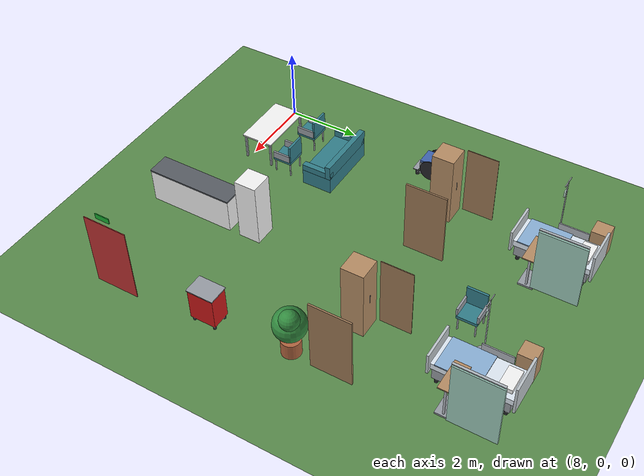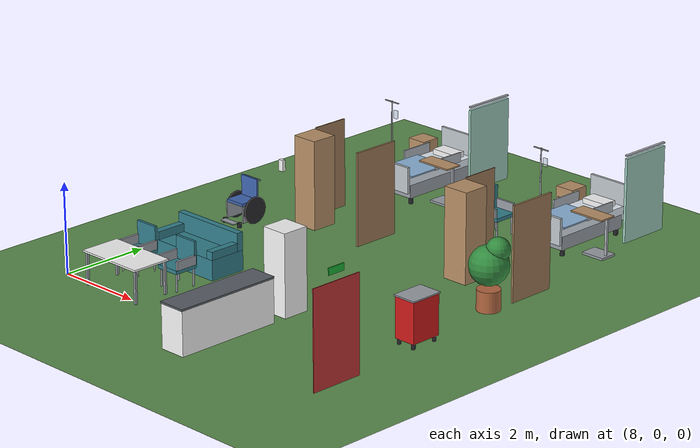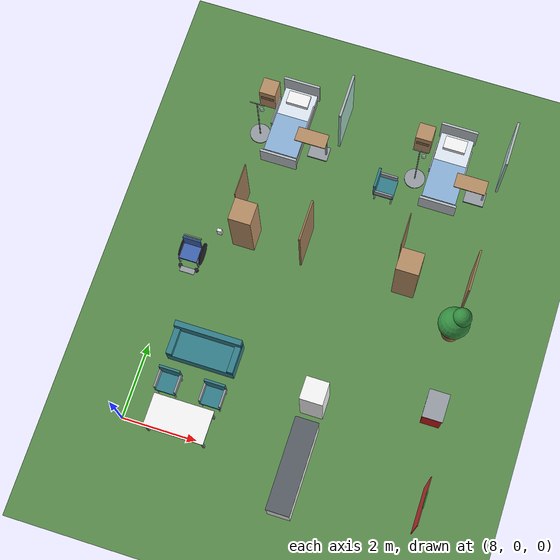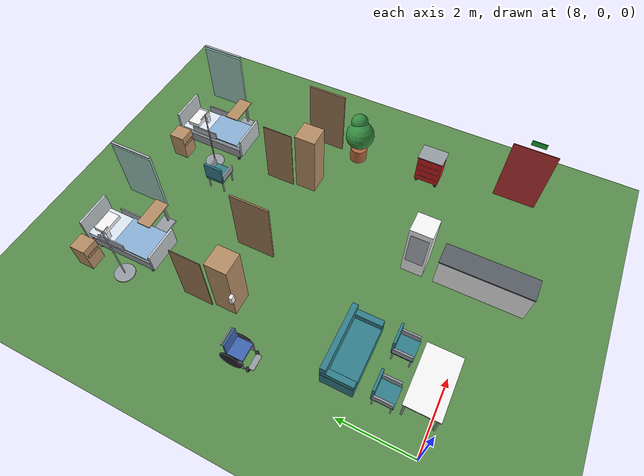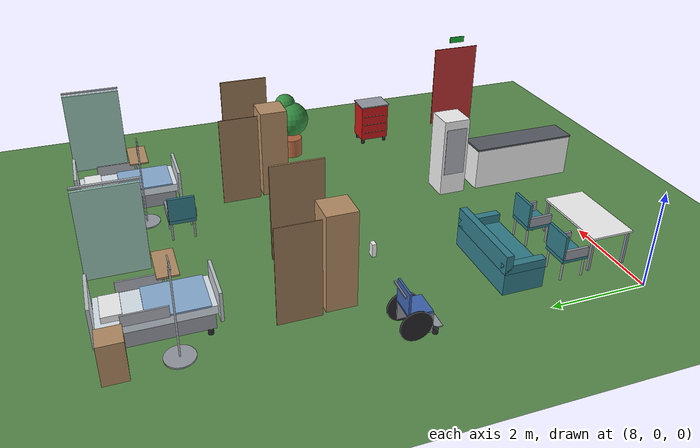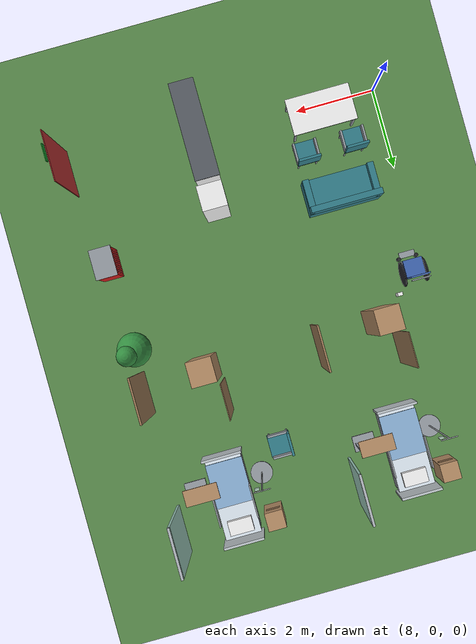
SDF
<sdf version="1.6">
 <world name="hospital">
  <include><uri>model://sun</uri></include>
  <model name="ground_plane">
   <static>true</static>
   <link name="link">
    <collision name="collision">
     <geometry><plane><normal>0 0 1</normal><size>100 100</size></plane></geometry>
     <surface>
      <contact><collide_bitmask>0xffff</collide_bitmask></contact>
      <friction><ode><mu>100</mu><mu2>50</mu2></ode></friction>
     </surface>
    </collision>
    <visual name="visual">
     <cast_shadows>false</cast_shadows>
     <geometry><plane><normal>0 0 1</normal><size>100 100</size></plane></geometry>
     <material>
      <ambient>0.35 0.55 0.3 1</ambient>
      <diffuse>0.35 0.55 0.3 1</diffuse>
      <specular>0 0 0 1</specular>
     </material>
    </visual>
   </link>
  </model>
  <model name="bathroom_door_N4">
   <static>true</static>
   <pose>9.16 6.4 0 0 0 1.5708</pose>
   <link name="link">
    <visual name="v0">
     <pose>0 0 1 0 0 0</pose>
     <geometry><box><size>0.85 0.02 2</size></box></geometry>
     <material>
      <ambient>0.62 0.48 0.34 1</ambient>
      <diffuse>0.62 0.48 0.34 1</diffuse>
      <specular>0.1 0.1 0.1 1</specular>
     </material>
    </visual>
   </link>
  </model>
  <model name="door_N4">
   <static>true</static>
   <pose>11.1 5.83 0 0 0 0</pose>
   <link name="link">
    <collision name="c0">
     <pose>0 0 1.04 0 0 0</pose>
     <geometry><box><size>0.045 1.1 2.08</size></box></geometry>
    </collision>
    <visual name="v0">
     <pose>0 0 1.04 0 0 0</pose>
     <geometry><box><size>0.045 1.1 2.08</size></box></geometry>
     <material>
      <ambient>0.62 0.48 0.34 1</ambient>
      <diffuse>0.62 0.48 0.34 1</diffuse>
      <specular>0.1 0.1 0.1 1</specular>
     </material>
    </visual>
   </link>
  </model>
  <model name="wardrobe_N4">
   <static>true</static>
   <pose>9.5 5.6 0 0 0 3.1416</pose>
   <link name="link">
    <collision name="c0">
     <pose>0 0 1 0 0 0</pose>
     <geometry><box><size>0.6 0.6 2</size></box></geometry>
    </collision>
    <visual name="v0">
     <pose>0 0 1 0 0 0</pose>
     <geometry><box><size>0.6 0.6 2</size></box></geometry>
     <material>
      <ambient>0.72 0.56 0.4 1</ambient>
      <diffuse>0.72 0.56 0.4 1</diffuse>
      <specular>0.1 0.1 0.1 1</specular>
     </material>
    </visual>
    <visual name="v1">
     <pose>0 -0.301 1.025 0 0 0</pose>
     <geometry><box><size>0.02 0.005 0.25</size></box></geometry>
     <material>
      <ambient>0.6 0.62 0.65 1</ambient>
      <diffuse>0.6 0.62 0.65 1</diffuse>
      <specular>0.1 0.1 0.1 1</specular>
     </material>
    </visual>
   </link>
  </model>
  <model name="bed_N4">
   <static>true</static>
   <pose>9.7 8.8 0 0 0 0</pose>
   <link name="link">
    <collision name="c0">
     <pose>-0.38 -0.85 0.075 0 0 0</pose>
     <geometry><cylinder><radius>0.05</radius><length>0.15</length></cylinder></geometry>
    </collision>
    <visual name="v0">
     <pose>-0.38 -0.85 0.075 0 0 0</pose>
     <geometry><cylinder><radius>0.05</radius><length>0.15</length></cylinder></geometry>
     <material>
      <ambient>0.15 0.15 0.17 1</ambient>
      <diffuse>0.15 0.15 0.17 1</diffuse>
      <specular>0.1 0.1 0.1 1</specular>
     </material>
    </visual>
    <collision name="c1">
     <pose>-0.38 0.85 0.075 0 0 0</pose>
     <geometry><cylinder><radius>0.05</radius><length>0.15</length></cylinder></geometry>
    </collision>
    <visual name="v1">
     <pose>-0.38 0.85 0.075 0 0 0</pose>
     <geometry><cylinder><radius>0.05</radius><length>0.15</length></cylinder></geometry>
     <material>
      <ambient>0.15 0.15 0.17 1</ambient>
      <diffuse>0.15 0.15 0.17 1</diffuse>
      <specular>0.1 0.1 0.1 1</specular>
     </material>
    </visual>
    <collision name="c2">
     <pose>0.38 -0.85 0.075 0 0 0</pose>
     <geometry><cylinder><radius>0.05</radius><length>0.15</length></cylinder></geometry>
    </collision>
    <visual name="v2">
     <pose>0.38 -0.85 0.075 0 0 0</pose>
     <geometry><cylinder><radius>0.05</radius><length>0.15</length></cylinder></geometry>
     <material>
      <ambient>0.15 0.15 0.17 1</ambient>
      <diffuse>0.15 0.15 0.17 1</diffuse>
      <specular>0.1 0.1 0.1 1</specular>
     </material>
    </visual>
    <collision name="c3">
     <pose>0.38 0.85 0.075 0 0 0</pose>
     <geometry><cylinder><radius>0.05</radius><length>0.15</length></cylinder></geometry>
    </collision>
    <visual name="v3">
     <pose>0.38 0.85 0.075 0 0 0</pose>
     <geometry><cylinder><radius>0.05</radius><length>0.15</length></cylinder></geometry>
     <material>
      <ambient>0.15 0.15 0.17 1</ambient>
      <diffuse>0.15 0.15 0.17 1</diffuse>
      <specular>0.1 0.1 0.1 1</specular>
     </material>
    </visual>
    <collision name="c4">
     <pose>0 0 0.3 0 0 0</pose>
     <geometry><box><size>0.9 1.9 0.3</size></box></geometry>
    </collision>
    <visual name="v4">
     <pose>0 0 0.3 0 0 0</pose>
     <geometry><box><size>0.9 1.9 0.3</size></box></geometry>
     <material>
      <ambient>0.6 0.62 0.65 1</ambient>
      <diffuse>0.6 0.62 0.65 1</diffuse>
      <specular>0.1 0.1 0.1 1</specular>
     </material>
    </visual>
    <visual name="v5">
     <pose>0 0 0.535 0 0 0</pose>
     <geometry><box><size>0.9 2 0.17</size></box></geometry>
     <material>
      <ambient>0.88 0.92 0.96 1</ambient>
      <diffuse>0.88 0.92 0.96 1</diffuse>
      <specular>0.1 0.1 0.1 1</specular>
     </material>
    </visual>
    <collision name="c6">
     <pose>0 1.05 0.7 0 0 0</pose>
     <geometry><box><size>1 0.06 0.8</size></box></geometry>
    </collision>
    <visual name="v6">
     <pose>0 1.05 0.7 0 0 0</pose>
     <geometry><box><size>1 0.06 0.8</size></box></geometry>
     <material>
      <ambient>0.75 0.78 0.8 1</ambient>
      <diffuse>0.75 0.78 0.8 1</diffuse>
      <specular>0.1 0.1 0.1 1</specular>
     </material>
    </visual>
    <collision name="c7">
     <pose>0 -1.05 0.6 0 0 0</pose>
     <geometry><box><size>1 0.06 0.6</size></box></geometry>
    </collision>
    <visual name="v7">
     <pose>0 -1.05 0.6 0 0 0</pose>
     <geometry><box><size>1 0.06 0.6</size></box></geometry>
     <material>
      <ambient>0.75 0.78 0.8 1</ambient>
      <diffuse>0.75 0.78 0.8 1</diffuse>
      <specular>0.1 0.1 0.1 1</specular>
     </material>
    </visual>
    <visual name="v8">
     <pose>0 0.72 0.68 0 0 0</pose>
     <geometry><box><size>0.6 0.35 0.12</size></box></geometry>
     <material>
      <ambient>0.97 0.97 0.97 1</ambient>
      <diffuse>0.97 0.97 0.97 1</diffuse>
      <specular>0.1 0.1 0.1 1</specular>
     </material>
    </visual>
    <visual name="v9">
     <pose>0 -0.35 0.635 0 0 0</pose>
     <geometry><box><size>0.92 1.1 0.03</size></box></geometry>
     <material>
      <ambient>0.55 0.7 0.85 1</ambient>
      <diffuse>0.55 0.7 0.85 1</diffuse>
      <specular>0.1 0.1 0.1 1</specular>
     </material>
    </visual>
    <visual name="v10">
     <pose>-0.47 0.2 0.73 0 0 0</pose>
     <geometry><box><size>0.03 0.8 0.22</size></box></geometry>
     <material>
      <ambient>0.7 0.72 0.75 1</ambient>
      <diffuse>0.7 0.72 0.75 1</diffuse>
      <specular>0.1 0.1 0.1 1</specular>
     </material>
    </visual>
    <visual name="v11">
     <pose>0.47 0.2 0.73 0 0 0</pose>
     <geometry><box><size>0.03 0.8 0.22</size></box></geometry>
     <material>
      <ambient>0.7 0.72 0.75 1</ambient>
      <diffuse>0.7 0.72 0.75 1</diffuse>
      <specular>0.1 0.1 0.1 1</specular>
     </material>
    </visual>
   </link>
  </model>
  <model name="bedside_cabinet_N4">
   <static>true</static>
   <pose>8.85 9.6 0 0 0 0</pose>
   <link name="link">
    <collision name="c0">
     <pose>0 0 0.4 0 0 0</pose>
     <geometry><box><size>0.45 0.45 0.8</size></box></geometry>
    </collision>
    <visual name="v0">
     <pose>0 0 0.4 0 0 0</pose>
     <geometry><box><size>0.45 0.45 0.8</size></box></geometry>
     <material>
      <ambient>0.72 0.56 0.4 1</ambient>
      <diffuse>0.72 0.56 0.4 1</diffuse>
      <specular>0.1 0.1 0.1 1</specular>
     </material>
    </visual>
    <visual name="v1">
     <pose>0 -0.226 0.51 0 0 0</pose>
     <geometry><box><size>0.35 0.005 0.12</size></box></geometry>
     <material>
      <ambient>0.6 0.45 0.32 1</ambient>
      <diffuse>0.6 0.45 0.32 1</diffuse>
      <specular>0.1 0.1 0.1 1</specular>
     </material>
    </visual>
   </link>
  </model>
  <model name="iv_stand_N4">
   <static>true</static>
   <pose>8.9 8.55 0 0 0 0</pose>
   <link name="link">
    <collision name="c0">
     <pose>0 0 0.015 0 0 0</pose>
     <geometry><cylinder><radius>0.28</radius><length>0.03</length></cylinder></geometry>
    </collision>
    <visual name="v0">
     <pose>0 0 0.015 0 0 0</pose>
     <geometry><cylinder><radius>0.28</radius><length>0.03</length></cylinder></geometry>
     <material>
      <ambient>0.6 0.62 0.65 1</ambient>
      <diffuse>0.6 0.62 0.65 1</diffuse>
      <specular>0.1 0.1 0.1 1</specular>
     </material>
    </visual>
    <collision name="c1">
     <pose>0 0 0.98 0 0 0</pose>
     <geometry><cylinder><radius>0.015</radius><length>1.9</length></cylinder></geometry>
    </collision>
    <visual name="v1">
     <pose>0 0 0.98 0 0 0</pose>
     <geometry><cylinder><radius>0.015</radius><length>1.9</length></cylinder></geometry>
     <material>
      <ambient>0.7 0.72 0.75 1</ambient>
      <diffuse>0.7 0.72 0.75 1</diffuse>
      <specular>0.1 0.1 0.1 1</specular>
     </material>
    </visual>
    <visual name="v2">
     <pose>0 0 1.91 0 0 0</pose>
     <geometry><box><size>0.4 0.02 0.02</size></box></geometry>
     <material>
      <ambient>0.7 0.72 0.75 1</ambient>
      <diffuse>0.7 0.72 0.75 1</diffuse>
      <specular>0.1 0.1 0.1 1</specular>
     </material>
    </visual>
    <visual name="v3">
     <pose>0.12 0 1.64 0 0 0</pose>
     <geometry><box><size>0.1 0.03 0.18</size></box></geometry>
     <material>
      <ambient>0.85 0.92 0.95 0.7</ambient>
      <diffuse>0.85 0.92 0.95 0.7</diffuse>
      <specular>0.1 0.1 0.1 1</specular>
     </material>
    </visual>
   </link>
  </model>
  <model name="overbed_table_N4">
   <static>true</static>
   <pose>10.45 8.5 0 0 0 0</pose>
   <link name="link">
    <collision name="c0">
     <pose>0.15 0 0.025 0 0 0</pose>
     <geometry><box><size>0.55 0.4 0.05</size></box></geometry>
    </collision>
    <visual name="v0">
     <pose>0.15 0 0.025 0 0 0</pose>
     <geometry><box><size>0.55 0.4 0.05</size></box></geometry>
     <material>
      <ambient>0.6 0.62 0.65 1</ambient>
      <diffuse>0.6 0.62 0.65 1</diffuse>
      <specular>0.1 0.1 0.1 1</specular>
     </material>
    </visual>
    <collision name="c1">
     <pose>0.35 0 0.45 0 0 0</pose>
     <geometry><box><size>0.05 0.05 0.8</size></box></geometry>
    </collision>
    <visual name="v1">
     <pose>0.35 0 0.45 0 0 0</pose>
     <geometry><box><size>0.05 0.05 0.8</size></box></geometry>
     <material>
      <ambient>0.7 0.72 0.75 1</ambient>
      <diffuse>0.7 0.72 0.75 1</diffuse>
      <specular>0.1 0.1 0.1 1</specular>
     </material>
    </visual>
    <visual name="v2">
     <pose>-0.05 0 0.865 0 0 0</pose>
     <geometry><box><size>0.85 0.4 0.03</size></box></geometry>
     <material>
      <ambient>0.72 0.56 0.4 1</ambient>
      <diffuse>0.72 0.56 0.4 1</diffuse>
      <specular>0.1 0.1 0.1 1</specular>
     </material>
    </visual>
   </link>
  </model>
  <model name="curtain_N4">
   <static>true</static>
   <pose>11.1 9.3 0 0 0 0</pose>
   <link name="link">
    <collision name="c0">
     <pose>0 0 1.275 0 0 0</pose>
     <geometry><box><size>0.06 1.2 1.85</size></box></geometry>
    </collision>
    <visual name="v0">
     <pose>0 0 1.275 0 0 0</pose>
     <geometry><box><size>0.06 1.2 1.85</size></box></geometry>
     <material>
      <ambient>0.62 0.8 0.74 1</ambient>
      <diffuse>0.62 0.8 0.74 1</diffuse>
      <specular>0.1 0.1 0.1 1</specular>
     </material>
    </visual>
    <visual name="v1">
     <pose>0 0 2.265 0 0 0</pose>
     <geometry><box><size>0.06 1.2 0.03</size></box></geometry>
     <material>
      <ambient>0.7 0.72 0.75 1</ambient>
      <diffuse>0.7 0.72 0.75 1</diffuse>
      <specular>0.1 0.1 0.1 1</specular>
     </material>
    </visual>
   </link>
  </model>
  <model name="bathroom_door_N5">
   <static>true</static>
   <pose>13.56 6.4 0 0 0 1.5708</pose>
   <link name="link">
    <visual name="v0">
     <pose>0 0 1 0 0 0</pose>
     <geometry><box><size>0.85 0.02 2</size></box></geometry>
     <material>
      <ambient>0.62 0.48 0.34 1</ambient>
      <diffuse>0.62 0.48 0.34 1</diffuse>
      <specular>0.1 0.1 0.1 1</specular>
     </material>
    </visual>
   </link>
  </model>
  <model name="door_N5">
   <static>true</static>
   <pose>15.5 5.83 0 0 0 0</pose>
   <link name="link">
    <collision name="c0">
     <pose>0 0 1.04 0 0 0</pose>
     <geometry><box><size>0.045 1.1 2.08</size></box></geometry>
    </collision>
    <visual name="v0">
     <pose>0 0 1.04 0 0 0</pose>
     <geometry><box><size>0.045 1.1 2.08</size></box></geometry>
     <material>
      <ambient>0.62 0.48 0.34 1</ambient>
      <diffuse>0.62 0.48 0.34 1</diffuse>
      <specular>0.1 0.1 0.1 1</specular>
     </material>
    </visual>
   </link>
  </model>
  <model name="wardrobe_N5">
   <static>true</static>
   <pose>13.9 5.6 0 0 0 3.1416</pose>
   <link name="link">
    <collision name="c0">
     <pose>0 0 1 0 0 0</pose>
     <geometry><box><size>0.6 0.6 2</size></box></geometry>
    </collision>
    <visual name="v0">
     <pose>0 0 1 0 0 0</pose>
     <geometry><box><size>0.6 0.6 2</size></box></geometry>
     <material>
      <ambient>0.72 0.56 0.4 1</ambient>
      <diffuse>0.72 0.56 0.4 1</diffuse>
      <specular>0.1 0.1 0.1 1</specular>
     </material>
    </visual>
    <visual name="v1">
     <pose>0 -0.301 1.025 0 0 0</pose>
     <geometry><box><size>0.02 0.005 0.25</size></box></geometry>
     <material>
      <ambient>0.6 0.62 0.65 1</ambient>
      <diffuse>0.6 0.62 0.65 1</diffuse>
      <specular>0.1 0.1 0.1 1</specular>
     </material>
    </visual>
   </link>
  </model>
  <model name="bed_N5">
   <static>true</static>
   <pose>14.1 8.8 0 0 0 0</pose>
   <link name="link">
    <collision name="c0">
     <pose>-0.38 -0.85 0.075 0 0 0</pose>
     <geometry><cylinder><radius>0.05</radius><length>0.15</length></cylinder></geometry>
    </collision>
    <visual name="v0">
     <pose>-0.38 -0.85 0.075 0 0 0</pose>
     <geometry><cylinder><radius>0.05</radius><length>0.15</length></cylinder></geometry>
     <material>
      <ambient>0.15 0.15 0.17 1</ambient>
      <diffuse>0.15 0.15 0.17 1</diffuse>
      <specular>0.1 0.1 0.1 1</specular>
     </material>
    </visual>
    <collision name="c1">
     <pose>-0.38 0.85 0.075 0 0 0</pose>
     <geometry><cylinder><radius>0.05</radius><length>0.15</length></cylinder></geometry>
    </collision>
    <visual name="v1">
     <pose>-0.38 0.85 0.075 0 0 0</pose>
     <geometry><cylinder><radius>0.05</radius><length>0.15</length></cylinder></geometry>
     <material>
      <ambient>0.15 0.15 0.17 1</ambient>
      <diffuse>0.15 0.15 0.17 1</diffuse>
      <specular>0.1 0.1 0.1 1</specular>
     </material>
    </visual>
    <collision name="c2">
     <pose>0.38 -0.85 0.075 0 0 0</pose>
     <geometry><cylinder><radius>0.05</radius><length>0.15</length></cylinder></geometry>
    </collision>
    <visual name="v2">
     <pose>0.38 -0.85 0.075 0 0 0</pose>
     <geometry><cylinder><radius>0.05</radius><length>0.15</length></cylinder></geometry>
     <material>
      <ambient>0.15 0.15 0.17 1</ambient>
      <diffuse>0.15 0.15 0.17 1</diffuse>
      <specular>0.1 0.1 0.1 1</specular>
     </material>
    </visual>
    <collision name="c3">
     <pose>0.38 0.85 0.075 0 0 0</pose>
     <geometry><cylinder><radius>0.05</radius><length>0.15</length></cylinder></geometry>
    </collision>
    <visual name="v3">
     <pose>0.38 0.85 0.075 0 0 0</pose>
     <geometry><cylinder><radius>0.05</radius><length>0.15</length></cylinder></geometry>
     <material>
      <ambient>0.15 0.15 0.17 1</ambient>
      <diffuse>0.15 0.15 0.17 1</diffuse>
      <specular>0.1 0.1 0.1 1</specular>
     </material>
    </visual>
    <collision name="c4">
     <pose>0 0 0.3 0 0 0</pose>
     <geometry><box><size>0.9 1.9 0.3</size></box></geometry>
    </collision>
    <visual name="v4">
     <pose>0 0 0.3 0 0 0</pose>
     <geometry><box><size>0.9 1.9 0.3</size></box></geometry>
     <material>
      <ambient>0.6 0.62 0.65 1</ambient>
      <diffuse>0.6 0.62 0.65 1</diffuse>
      <specular>0.1 0.1 0.1 1</specular>
     </material>
    </visual>
    <visual name="v5">
     <pose>0 0 0.535 0 0 0</pose>
     <geometry><box><size>0.9 2 0.17</size></box></geometry>
     <material>
      <ambient>0.88 0.92 0.96 1</ambient>
      <diffuse>0.88 0.92 0.96 1</diffuse>
      <specular>0.1 0.1 0.1 1</specular>
     </material>
    </visual>
    <collision name="c6">
     <pose>0 1.05 0.7 0 0 0</pose>
     <geometry><box><size>1 0.06 0.8</size></box></geometry>
    </collision>
    <visual name="v6">
     <pose>0 1.05 0.7 0 0 0</pose>
     <geometry><box><size>1 0.06 0.8</size></box></geometry>
     <material>
      <ambient>0.75 0.78 0.8 1</ambient>
      <diffuse>0.75 0.78 0.8 1</diffuse>
      <specular>0.1 0.1 0.1 1</specular>
     </material>
    </visual>
    <collision name="c7">
     <pose>0 -1.05 0.6 0 0 0</pose>
     <geometry><box><size>1 0.06 0.6</size></box></geometry>
    </collision>
    <visual name="v7">
     <pose>0 -1.05 0.6 0 0 0</pose>
     <geometry><box><size>1 0.06 0.6</size></box></geometry>
     <material>
      <ambient>0.75 0.78 0.8 1</ambient>
      <diffuse>0.75 0.78 0.8 1</diffuse>
      <specular>0.1 0.1 0.1 1</specular>
     </material>
    </visual>
    <visual name="v8">
     <pose>0 0.72 0.68 0 0 0</pose>
     <geometry><box><size>0.6 0.35 0.12</size></box></geometry>
     <material>
      <ambient>0.97 0.97 0.97 1</ambient>
      <diffuse>0.97 0.97 0.97 1</diffuse>
      <specular>0.1 0.1 0.1 1</specular>
     </material>
    </visual>
    <visual name="v9">
     <pose>0 -0.35 0.635 0 0 0</pose>
     <geometry><box><size>0.92 1.1 0.03</size></box></geometry>
     <material>
      <ambient>0.55 0.7 0.85 1</ambient>
      <diffuse>0.55 0.7 0.85 1</diffuse>
      <specular>0.1 0.1 0.1 1</specular>
     </material>
    </visual>
    <visual name="v10">
     <pose>-0.47 0.2 0.73 0 0 0</pose>
     <geometry><box><size>0.03 0.8 0.22</size></box></geometry>
     <material>
      <ambient>0.7 0.72 0.75 1</ambient>
      <diffuse>0.7 0.72 0.75 1</diffuse>
      <specular>0.1 0.1 0.1 1</specular>
     </material>
    </visual>
    <visual name="v11">
     <pose>0.47 0.2 0.73 0 0 0</pose>
     <geometry><box><size>0.03 0.8 0.22</size></box></geometry>
     <material>
      <ambient>0.7 0.72 0.75 1</ambient>
      <diffuse>0.7 0.72 0.75 1</diffuse>
      <specular>0.1 0.1 0.1 1</specular>
     </material>
    </visual>
   </link>
  </model>
  <model name="bedside_cabinet_N5">
   <static>true</static>
   <pose>13.25 9.6 0 0 0 0</pose>
   <link name="link">
    <collision name="c0">
     <pose>0 0 0.4 0 0 0</pose>
     <geometry><box><size>0.45 0.45 0.8</size></box></geometry>
    </collision>
    <visual name="v0">
     <pose>0 0 0.4 0 0 0</pose>
     <geometry><box><size>0.45 0.45 0.8</size></box></geometry>
     <material>
      <ambient>0.72 0.56 0.4 1</ambient>
      <diffuse>0.72 0.56 0.4 1</diffuse>
      <specular>0.1 0.1 0.1 1</specular>
     </material>
    </visual>
    <visual name="v1">
     <pose>0 -0.226 0.51 0 0 0</pose>
     <geometry><box><size>0.35 0.005 0.12</size></box></geometry>
     <material>
      <ambient>0.6 0.45 0.32 1</ambient>
      <diffuse>0.6 0.45 0.32 1</diffuse>
      <specular>0.1 0.1 0.1 1</specular>
     </material>
    </visual>
   </link>
  </model>
  <model name="iv_stand_N5">
   <static>true</static>
   <pose>13.3 8.55 0 0 0 0</pose>
   <link name="link">
    <collision name="c0">
     <pose>0 0 0.015 0 0 0</pose>
     <geometry><cylinder><radius>0.28</radius><length>0.03</length></cylinder></geometry>
    </collision>
    <visual name="v0">
     <pose>0 0 0.015 0 0 0</pose>
     <geometry><cylinder><radius>0.28</radius><length>0.03</length></cylinder></geometry>
     <material>
      <ambient>0.6 0.62 0.65 1</ambient>
      <diffuse>0.6 0.62 0.65 1</diffuse>
      <specular>0.1 0.1 0.1 1</specular>
     </material>
    </visual>
    <collision name="c1">
     <pose>0 0 0.98 0 0 0</pose>
     <geometry><cylinder><radius>0.015</radius><length>1.9</length></cylinder></geometry>
    </collision>
    <visual name="v1">
     <pose>0 0 0.98 0 0 0</pose>
     <geometry><cylinder><radius>0.015</radius><length>1.9</length></cylinder></geometry>
     <material>
      <ambient>0.7 0.72 0.75 1</ambient>
      <diffuse>0.7 0.72 0.75 1</diffuse>
      <specular>0.1 0.1 0.1 1</specular>
     </material>
    </visual>
    <visual name="v2">
     <pose>0 0 1.91 0 0 0</pose>
     <geometry><box><size>0.4 0.02 0.02</size></box></geometry>
     <material>
      <ambient>0.7 0.72 0.75 1</ambient>
      <diffuse>0.7 0.72 0.75 1</diffuse>
      <specular>0.1 0.1 0.1 1</specular>
     </material>
    </visual>
    <visual name="v3">
     <pose>0.12 0 1.64 0 0 0</pose>
     <geometry><box><size>0.1 0.03 0.18</size></box></geometry>
     <material>
      <ambient>0.85 0.92 0.95 0.7</ambient>
      <diffuse>0.85 0.92 0.95 0.7</diffuse>
      <specular>0.1 0.1 0.1 1</specular>
     </material>
    </visual>
   </link>
  </model>
  <model name="visitor_chair_N5">
   <static>true</static>
   <pose>12.65 7.9 0 0 0 1.5708</pose>
   <link name="link">
    <collision name="c0">
     <pose>-0.23 -0.23 0.2 0 0 0</pose>
     <geometry><cylinder><radius>0.02</radius><length>0.4</length></cylinder></geometry>
    </collision>
    <visual name="v0">
     <pose>-0.23 -0.23 0.2 0 0 0</pose>
     <geometry><cylinder><radius>0.02</radius><length>0.4</length></cylinder></geometry>
     <material>
      <ambient>0.6 0.62 0.65 1</ambient>
      <diffuse>0.6 0.62 0.65 1</diffuse>
      <specular>0.1 0.1 0.1 1</specular>
     </material>
    </visual>
    <collision name="c1">
     <pose>-0.23 0.23 0.2 0 0 0</pose>
     <geometry><cylinder><radius>0.02</radius><length>0.4</length></cylinder></geometry>
    </collision>
    <visual name="v1">
     <pose>-0.23 0.23 0.2 0 0 0</pose>
     <geometry><cylinder><radius>0.02</radius><length>0.4</length></cylinder></geometry>
     <material>
      <ambient>0.6 0.62 0.65 1</ambient>
      <diffuse>0.6 0.62 0.65 1</diffuse>
      <specular>0.1 0.1 0.1 1</specular>
     </material>
    </visual>
    <collision name="c2">
     <pose>0.23 -0.23 0.2 0 0 0</pose>
     <geometry><cylinder><radius>0.02</radius><length>0.4</length></cylinder></geometry>
    </collision>
    <visual name="v2">
     <pose>0.23 -0.23 0.2 0 0 0</pose>
     <geometry><cylinder><radius>0.02</radius><length>0.4</length></cylinder></geometry>
     <material>
      <ambient>0.6 0.62 0.65 1</ambient>
      <diffuse>0.6 0.62 0.65 1</diffuse>
      <specular>0.1 0.1 0.1 1</specular>
     </material>
    </visual>
    <collision name="c3">
     <pose>0.23 0.23 0.2 0 0 0</pose>
     <geometry><cylinder><radius>0.02</radius><length>0.4</length></cylinder></geometry>
    </collision>
    <visual name="v3">
     <pose>0.23 0.23 0.2 0 0 0</pose>
     <geometry><cylinder><radius>0.02</radius><length>0.4</length></cylinder></geometry>
     <material>
      <ambient>0.6 0.62 0.65 1</ambient>
      <diffuse>0.6 0.62 0.65 1</diffuse>
      <specular>0.1 0.1 0.1 1</specular>
     </material>
    </visual>
    <visual name="v4">
     <pose>0 0 0.44 0 0 0</pose>
     <geometry><box><size>0.55 0.55 0.08</size></box></geometry>
     <material>
      <ambient>0.2 0.5 0.55 1</ambient>
      <diffuse>0.2 0.5 0.55 1</diffuse>
      <specular>0.1 0.1 0.1 1</specular>
     </material>
    </visual>
    <visual name="v5">
     <pose>0 0.25 0.73 0 0 0</pose>
     <geometry><box><size>0.55 0.06 0.5</size></box></geometry>
     <material>
      <ambient>0.2 0.5 0.55 1</ambient>
      <diffuse>0.2 0.5 0.55 1</diffuse>
      <specular>0.1 0.1 0.1 1</specular>
     </material>
    </visual>
    <visual name="v6">
     <pose>-0.27 0 0.58 0 0 0</pose>
     <geometry><box><size>0.05 0.5 0.2</size></box></geometry>
     <material>
      <ambient>0.6 0.62 0.65 1</ambient>
      <diffuse>0.6 0.62 0.65 1</diffuse>
      <specular>0.1 0.1 0.1 1</specular>
     </material>
    </visual>
    <visual name="v7">
     <pose>0.27 0 0.58 0 0 0</pose>
     <geometry><box><size>0.05 0.5 0.2</size></box></geometry>
     <material>
      <ambient>0.6 0.62 0.65 1</ambient>
      <diffuse>0.6 0.62 0.65 1</diffuse>
      <specular>0.1 0.1 0.1 1</specular>
     </material>
    </visual>
   </link>
  </model>
  <model name="overbed_table_N5">
   <static>true</static>
   <pose>14.85 8.5 0 0 0 0</pose>
   <link name="link">
    <collision name="c0">
     <pose>0.15 0 0.025 0 0 0</pose>
     <geometry><box><size>0.55 0.4 0.05</size></box></geometry>
    </collision>
    <visual name="v0">
     <pose>0.15 0 0.025 0 0 0</pose>
     <geometry><box><size>0.55 0.4 0.05</size></box></geometry>
     <material>
      <ambient>0.6 0.62 0.65 1</ambient>
      <diffuse>0.6 0.62 0.65 1</diffuse>
      <specular>0.1 0.1 0.1 1</specular>
     </material>
    </visual>
    <collision name="c1">
     <pose>0.35 0 0.45 0 0 0</pose>
     <geometry><box><size>0.05 0.05 0.8</size></box></geometry>
    </collision>
    <visual name="v1">
     <pose>0.35 0 0.45 0 0 0</pose>
     <geometry><box><size>0.05 0.05 0.8</size></box></geometry>
     <material>
      <ambient>0.7 0.72 0.75 1</ambient>
      <diffuse>0.7 0.72 0.75 1</diffuse>
      <specular>0.1 0.1 0.1 1</specular>
     </material>
    </visual>
    <visual name="v2">
     <pose>-0.05 0 0.865 0 0 0</pose>
     <geometry><box><size>0.85 0.4 0.03</size></box></geometry>
     <material>
      <ambient>0.72 0.56 0.4 1</ambient>
      <diffuse>0.72 0.56 0.4 1</diffuse>
      <specular>0.1 0.1 0.1 1</specular>
     </material>
    </visual>
   </link>
  </model>
  <model name="curtain_N5">
   <static>true</static>
   <pose>15.5 9.3 0 0 0 0</pose>
   <link name="link">
    <collision name="c0">
     <pose>0 0 1.275 0 0 0</pose>
     <geometry><box><size>0.06 1.2 1.85</size></box></geometry>
    </collision>
    <visual name="v0">
     <pose>0 0 1.275 0 0 0</pose>
     <geometry><box><size>0.06 1.2 1.85</size></box></geometry>
     <material>
      <ambient>0.62 0.8 0.74 1</ambient>
      <diffuse>0.62 0.8 0.74 1</diffuse>
      <specular>0.1 0.1 0.1 1</specular>
     </material>
    </visual>
    <visual name="v1">
     <pose>0 0 2.265 0 0 0</pose>
     <geometry><box><size>0.06 1.2 0.03</size></box></geometry>
     <material>
      <ambient>0.7 0.72 0.75 1</ambient>
      <diffuse>0.7 0.72 0.75 1</diffuse>
      <specular>0.1 0.1 0.1 1</specular>
     </material>
    </visual>
   </link>
  </model>
  <model name="lounge_table">
   <static>true</static>
   <pose>9.5 0.3 0 0 0 0</pose>
   <link name="link">
    <visual name="v0">
     <pose>0 0 0.74 0 0 0</pose>
     <geometry><box><size>1.6 0.9 0.04</size></box></geometry>
     <material>
      <ambient>0.97 0.97 0.97 1</ambient>
      <diffuse>0.97 0.97 0.97 1</diffuse>
      <specular>0.1 0.1 0.1 1</specular>
     </material>
    </visual>
    <collision name="c1">
     <pose>-0.74 -0.39 0.36 0 0 0</pose>
     <geometry><box><size>0.05 0.05 0.72</size></box></geometry>
    </collision>
    <visual name="v1">
     <pose>-0.74 -0.39 0.36 0 0 0</pose>
     <geometry><box><size>0.05 0.05 0.72</size></box></geometry>
     <material>
      <ambient>0.6 0.62 0.65 1</ambient>
      <diffuse>0.6 0.62 0.65 1</diffuse>
      <specular>0.1 0.1 0.1 1</specular>
     </material>
    </visual>
    <collision name="c2">
     <pose>-0.74 0.39 0.36 0 0 0</pose>
     <geometry><box><size>0.05 0.05 0.72</size></box></geometry>
    </collision>
    <visual name="v2">
     <pose>-0.74 0.39 0.36 0 0 0</pose>
     <geometry><box><size>0.05 0.05 0.72</size></box></geometry>
     <material>
      <ambient>0.6 0.62 0.65 1</ambient>
      <diffuse>0.6 0.62 0.65 1</diffuse>
      <specular>0.1 0.1 0.1 1</specular>
     </material>
    </visual>
    <collision name="c3">
     <pose>0.74 -0.39 0.36 0 0 0</pose>
     <geometry><box><size>0.05 0.05 0.72</size></box></geometry>
    </collision>
    <visual name="v3">
     <pose>0.74 -0.39 0.36 0 0 0</pose>
     <geometry><box><size>0.05 0.05 0.72</size></box></geometry>
     <material>
      <ambient>0.6 0.62 0.65 1</ambient>
      <diffuse>0.6 0.62 0.65 1</diffuse>
      <specular>0.1 0.1 0.1 1</specular>
     </material>
    </visual>
    <collision name="c4">
     <pose>0.74 0.39 0.36 0 0 0</pose>
     <geometry><box><size>0.05 0.05 0.72</size></box></geometry>
    </collision>
    <visual name="v4">
     <pose>0.74 0.39 0.36 0 0 0</pose>
     <geometry><box><size>0.05 0.05 0.72</size></box></geometry>
     <material>
      <ambient>0.6 0.62 0.65 1</ambient>
      <diffuse>0.6 0.62 0.65 1</diffuse>
      <specular>0.1 0.1 0.1 1</specular>
     </material>
    </visual>
   </link>
  </model>
  <model name="lounge_chair_2">
   <static>true</static>
   <pose>8.9 1.15 0 0 0 0</pose>
   <link name="link">
    <collision name="c0">
     <pose>-0.23 -0.23 0.2 0 0 0</pose>
     <geometry><cylinder><radius>0.02</radius><length>0.4</length></cylinder></geometry>
    </collision>
    <visual name="v0">
     <pose>-0.23 -0.23 0.2 0 0 0</pose>
     <geometry><cylinder><radius>0.02</radius><length>0.4</length></cylinder></geometry>
     <material>
      <ambient>0.6 0.62 0.65 1</ambient>
      <diffuse>0.6 0.62 0.65 1</diffuse>
      <specular>0.1 0.1 0.1 1</specular>
     </material>
    </visual>
    <collision name="c1">
     <pose>-0.23 0.23 0.2 0 0 0</pose>
     <geometry><cylinder><radius>0.02</radius><length>0.4</length></cylinder></geometry>
    </collision>
    <visual name="v1">
     <pose>-0.23 0.23 0.2 0 0 0</pose>
     <geometry><cylinder><radius>0.02</radius><length>0.4</length></cylinder></geometry>
     <material>
      <ambient>0.6 0.62 0.65 1</ambient>
      <diffuse>0.6 0.62 0.65 1</diffuse>
      <specular>0.1 0.1 0.1 1</specular>
     </material>
    </visual>
    <collision name="c2">
     <pose>0.23 -0.23 0.2 0 0 0</pose>
     <geometry><cylinder><radius>0.02</radius><length>0.4</length></cylinder></geometry>
    </collision>
    <visual name="v2">
     <pose>0.23 -0.23 0.2 0 0 0</pose>
     <geometry><cylinder><radius>0.02</radius><length>0.4</length></cylinder></geometry>
     <material>
      <ambient>0.6 0.62 0.65 1</ambient>
      <diffuse>0.6 0.62 0.65 1</diffuse>
      <specular>0.1 0.1 0.1 1</specular>
     </material>
    </visual>
    <collision name="c3">
     <pose>0.23 0.23 0.2 0 0 0</pose>
     <geometry><cylinder><radius>0.02</radius><length>0.4</length></cylinder></geometry>
    </collision>
    <visual name="v3">
     <pose>0.23 0.23 0.2 0 0 0</pose>
     <geometry><cylinder><radius>0.02</radius><length>0.4</length></cylinder></geometry>
     <material>
      <ambient>0.6 0.62 0.65 1</ambient>
      <diffuse>0.6 0.62 0.65 1</diffuse>
      <specular>0.1 0.1 0.1 1</specular>
     </material>
    </visual>
    <visual name="v4">
     <pose>0 0 0.44 0 0 0</pose>
     <geometry><box><size>0.55 0.55 0.08</size></box></geometry>
     <material>
      <ambient>0.2 0.5 0.55 1</ambient>
      <diffuse>0.2 0.5 0.55 1</diffuse>
      <specular>0.1 0.1 0.1 1</specular>
     </material>
    </visual>
    <visual name="v5">
     <pose>0 0.25 0.73 0 0 0</pose>
     <geometry><box><size>0.55 0.06 0.5</size></box></geometry>
     <material>
      <ambient>0.2 0.5 0.55 1</ambient>
      <diffuse>0.2 0.5 0.55 1</diffuse>
      <specular>0.1 0.1 0.1 1</specular>
     </material>
    </visual>
    <visual name="v6">
     <pose>-0.27 0 0.58 0 0 0</pose>
     <geometry><box><size>0.05 0.5 0.2</size></box></geometry>
     <material>
      <ambient>0.6 0.62 0.65 1</ambient>
      <diffuse>0.6 0.62 0.65 1</diffuse>
      <specular>0.1 0.1 0.1 1</specular>
     </material>
    </visual>
    <visual name="v7">
     <pose>0.27 0 0.58 0 0 0</pose>
     <geometry><box><size>0.05 0.5 0.2</size></box></geometry>
     <material>
      <ambient>0.6 0.62 0.65 1</ambient>
      <diffuse>0.6 0.62 0.65 1</diffuse>
      <specular>0.1 0.1 0.1 1</specular>
     </material>
    </visual>
   </link>
  </model>
  <model name="lounge_chair_3">
   <static>true</static>
   <pose>10.1 1.15 0 0 0 0</pose>
   <link name="link">
    <collision name="c0">
     <pose>-0.23 -0.23 0.2 0 0 0</pose>
     <geometry><cylinder><radius>0.02</radius><length>0.4</length></cylinder></geometry>
    </collision>
    <visual name="v0">
     <pose>-0.23 -0.23 0.2 0 0 0</pose>
     <geometry><cylinder><radius>0.02</radius><length>0.4</length></cylinder></geometry>
     <material>
      <ambient>0.6 0.62 0.65 1</ambient>
      <diffuse>0.6 0.62 0.65 1</diffuse>
      <specular>0.1 0.1 0.1 1</specular>
     </material>
    </visual>
    <collision name="c1">
     <pose>-0.23 0.23 0.2 0 0 0</pose>
     <geometry><cylinder><radius>0.02</radius><length>0.4</length></cylinder></geometry>
    </collision>
    <visual name="v1">
     <pose>-0.23 0.23 0.2 0 0 0</pose>
     <geometry><cylinder><radius>0.02</radius><length>0.4</length></cylinder></geometry>
     <material>
      <ambient>0.6 0.62 0.65 1</ambient>
      <diffuse>0.6 0.62 0.65 1</diffuse>
      <specular>0.1 0.1 0.1 1</specular>
     </material>
    </visual>
    <collision name="c2">
     <pose>0.23 -0.23 0.2 0 0 0</pose>
     <geometry><cylinder><radius>0.02</radius><length>0.4</length></cylinder></geometry>
    </collision>
    <visual name="v2">
     <pose>0.23 -0.23 0.2 0 0 0</pose>
     <geometry><cylinder><radius>0.02</radius><length>0.4</length></cylinder></geometry>
     <material>
      <ambient>0.6 0.62 0.65 1</ambient>
      <diffuse>0.6 0.62 0.65 1</diffuse>
      <specular>0.1 0.1 0.1 1</specular>
     </material>
    </visual>
    <collision name="c3">
     <pose>0.23 0.23 0.2 0 0 0</pose>
     <geometry><cylinder><radius>0.02</radius><length>0.4</length></cylinder></geometry>
    </collision>
    <visual name="v3">
     <pose>0.23 0.23 0.2 0 0 0</pose>
     <geometry><cylinder><radius>0.02</radius><length>0.4</length></cylinder></geometry>
     <material>
      <ambient>0.6 0.62 0.65 1</ambient>
      <diffuse>0.6 0.62 0.65 1</diffuse>
      <specular>0.1 0.1 0.1 1</specular>
     </material>
    </visual>
    <visual name="v4">
     <pose>0 0 0.44 0 0 0</pose>
     <geometry><box><size>0.55 0.55 0.08</size></box></geometry>
     <material>
      <ambient>0.2 0.5 0.55 1</ambient>
      <diffuse>0.2 0.5 0.55 1</diffuse>
      <specular>0.1 0.1 0.1 1</specular>
     </material>
    </visual>
    <visual name="v5">
     <pose>0 0.25 0.73 0 0 0</pose>
     <geometry><box><size>0.55 0.06 0.5</size></box></geometry>
     <material>
      <ambient>0.2 0.5 0.55 1</ambient>
      <diffuse>0.2 0.5 0.55 1</diffuse>
      <specular>0.1 0.1 0.1 1</specular>
     </material>
    </visual>
    <visual name="v6">
     <pose>-0.27 0 0.58 0 0 0</pose>
     <geometry><box><size>0.05 0.5 0.2</size></box></geometry>
     <material>
      <ambient>0.6 0.62 0.65 1</ambient>
      <diffuse>0.6 0.62 0.65 1</diffuse>
      <specular>0.1 0.1 0.1 1</specular>
     </material>
    </visual>
    <visual name="v7">
     <pose>0.27 0 0.58 0 0 0</pose>
     <geometry><box><size>0.05 0.5 0.2</size></box></geometry>
     <material>
      <ambient>0.6 0.62 0.65 1</ambient>
      <diffuse>0.6 0.62 0.65 1</diffuse>
      <specular>0.1 0.1 0.1 1</specular>
     </material>
    </visual>
   </link>
  </model>
  <model name="lounge_sofa">
   <static>true</static>
   <pose>9.5 2.25 0 0 0 0</pose>
   <link name="link">
    <collision name="c0">
     <pose>0 0 0.225 0 0 0</pose>
     <geometry><box><size>1.8 0.85 0.45</size></box></geometry>
    </collision>
    <visual name="v0">
     <pose>0 0 0.225 0 0 0</pose>
     <geometry><box><size>1.8 0.85 0.45</size></box></geometry>
     <material>
      <ambient>0.2 0.5 0.55 1</ambient>
      <diffuse>0.2 0.5 0.55 1</diffuse>
      <specular>0.1 0.1 0.1 1</specular>
     </material>
    </visual>
    <visual name="v1">
     <pose>0 0.35 0.65 0 0 0</pose>
     <geometry><box><size>1.8 0.15 0.4</size></box></geometry>
     <material>
      <ambient>0.2 0.5 0.55 1</ambient>
      <diffuse>0.2 0.5 0.55 1</diffuse>
      <specular>0.1 0.1 0.1 1</specular>
     </material>
    </visual>
    <visual name="v2">
     <pose>-0.82 0 0.54 0 0 0</pose>
     <geometry><box><size>0.16 0.85 0.18</size></box></geometry>
     <material>
      <ambient>0.2 0.5 0.55 1</ambient>
      <diffuse>0.2 0.5 0.55 1</diffuse>
      <specular>0.1 0.1 0.1 1</specular>
     </material>
    </visual>
    <visual name="v3">
     <pose>0.82 0 0.54 0 0 0</pose>
     <geometry><box><size>0.16 0.85 0.18</size></box></geometry>
     <material>
      <ambient>0.2 0.5 0.55 1</ambient>
      <diffuse>0.2 0.5 0.55 1</diffuse>
      <specular>0.1 0.1 0.1 1</specular>
     </material>
    </visual>
   </link>
  </model>
  <model name="lounge_kitchenette">
   <static>true</static>
   <pose>12.6 0 0 0 0 1.5708</pose>
   <link name="link">
    <collision name="c0">
     <pose>0 0 0.475 0 0 0</pose>
     <geometry><box><size>2.4 0.6 0.95</size></box></geometry>
    </collision>
    <visual name="v0">
     <pose>0 0 0.475 0 0 0</pose>
     <geometry><box><size>2.4 0.6 0.95</size></box></geometry>
     <material>
      <ambient>0.97 0.97 0.97 1</ambient>
      <diffuse>0.97 0.97 0.97 1</diffuse>
      <specular>0.1 0.1 0.1 1</specular>
     </material>
    </visual>
    <visual name="v1">
     <pose>0 0 0.97 0 0 0</pose>
     <geometry><box><size>2.42 0.62 0.04</size></box></geometry>
     <material>
      <ambient>0.35 0.37 0.4 1</ambient>
      <diffuse>0.35 0.37 0.4 1</diffuse>
      <specular>0.1 0.1 0.1 1</specular>
     </material>
    </visual>
   </link>
  </model>
  <model name="lounge_fridge">
   <static>true</static>
   <pose>12.6 1.8 0 0 0 -1.5708</pose>
   <link name="link">
    <collision name="c0">
     <pose>0 0 0.9 0 0 0</pose>
     <geometry><box><size>0.6 0.6 1.8</size></box></geometry>
    </collision>
    <visual name="v0">
     <pose>0 0 0.9 0 0 0</pose>
     <geometry><box><size>0.6 0.6 1.8</size></box></geometry>
     <material>
      <ambient>0.97 0.97 0.97 1</ambient>
      <diffuse>0.97 0.97 0.97 1</diffuse>
      <specular>0.1 0.1 0.1 1</specular>
     </material>
    </visual>
    <visual name="v1">
     <pose>0 -0.303 1.05 0 0 0</pose>
     <geometry><box><size>0.48 0.005 1.1</size></box></geometry>
     <material>
      <ambient>0.7 0.72 0.75 1</ambient>
      <diffuse>0.7 0.72 0.75 1</diffuse>
      <specular>0.1 0.1 0.1 1</specular>
     </material>
    </visual>
   </link>
  </model>
  <model name="wheelchair_corridor">
   <static>true</static>
   <pose>8.3 4.6 0 0 0 0</pose>
   <link name="link">
    <collision name="c0">
     <pose>-0.28 0.1 0.3 0 1.5708 0</pose>
     <geometry><cylinder><radius>0.3</radius><length>0.03</length></cylinder></geometry>
    </collision>
    <visual name="v0">
     <pose>-0.28 0.1 0.3 0 1.5708 0</pose>
     <geometry><cylinder><radius>0.3</radius><length>0.03</length></cylinder></geometry>
     <material>
      <ambient>0.15 0.15 0.17 1</ambient>
      <diffuse>0.15 0.15 0.17 1</diffuse>
      <specular>0.1 0.1 0.1 1</specular>
     </material>
    </visual>
    <collision name="c1">
     <pose>-0.224 -0.3 0.05 0 0 0</pose>
     <geometry><cylinder><radius>0.05</radius><length>0.1</length></cylinder></geometry>
    </collision>
    <visual name="v1">
     <pose>-0.224 -0.3 0.05 0 0 0</pose>
     <geometry><cylinder><radius>0.05</radius><length>0.1</length></cylinder></geometry>
     <material>
      <ambient>0.15 0.15 0.17 1</ambient>
      <diffuse>0.15 0.15 0.17 1</diffuse>
      <specular>0.1 0.1 0.1 1</specular>
     </material>
    </visual>
    <collision name="c2">
     <pose>0.28 0.1 0.3 0 1.5708 0</pose>
     <geometry><cylinder><radius>0.3</radius><length>0.03</length></cylinder></geometry>
    </collision>
    <visual name="v2">
     <pose>0.28 0.1 0.3 0 1.5708 0</pose>
     <geometry><cylinder><radius>0.3</radius><length>0.03</length></cylinder></geometry>
     <material>
      <ambient>0.15 0.15 0.17 1</ambient>
      <diffuse>0.15 0.15 0.17 1</diffuse>
      <specular>0.1 0.1 0.1 1</specular>
     </material>
    </visual>
    <collision name="c3">
     <pose>0.224 -0.3 0.05 0 0 0</pose>
     <geometry><cylinder><radius>0.05</radius><length>0.1</length></cylinder></geometry>
    </collision>
    <visual name="v3">
     <pose>0.224 -0.3 0.05 0 0 0</pose>
     <geometry><cylinder><radius>0.05</radius><length>0.1</length></cylinder></geometry>
     <material>
      <ambient>0.15 0.15 0.17 1</ambient>
      <diffuse>0.15 0.15 0.17 1</diffuse>
      <specular>0.1 0.1 0.1 1</specular>
     </material>
    </visual>
    <visual name="v4">
     <pose>0 0 0.48 0 0 0</pose>
     <geometry><box><size>0.48 0.45 0.06</size></box></geometry>
     <material>
      <ambient>0.25 0.4 0.7 1</ambient>
      <diffuse>0.25 0.4 0.7 1</diffuse>
      <specular>0.1 0.1 0.1 1</specular>
     </material>
    </visual>
    <visual name="v5">
     <pose>0 0.22 0.735 0 0 0</pose>
     <geometry><box><size>0.48 0.04 0.45</size></box></geometry>
     <material>
      <ambient>0.25 0.4 0.7 1</ambient>
      <diffuse>0.25 0.4 0.7 1</diffuse>
      <specular>0.1 0.1 0.1 1</specular>
     </material>
    </visual>
    <visual name="v6">
     <pose>0 0.3 0.915 0 0 0</pose>
     <geometry><box><size>0.48 0.03 0.03</size></box></geometry>
     <material>
      <ambient>0.6 0.62 0.65 1</ambient>
      <diffuse>0.6 0.62 0.65 1</diffuse>
      <specular>0.1 0.1 0.1 1</specular>
     </material>
    </visual>
    <collision name="c7">
     <pose>-0.25 0 0.265 0 0 0</pose>
     <geometry><box><size>0.03 0.45 0.37</size></box></geometry>
    </collision>
    <visual name="v7">
     <pose>-0.25 0 0.265 0 0 0</pose>
     <geometry><box><size>0.03 0.45 0.37</size></box></geometry>
     <material>
      <ambient>0.6 0.62 0.65 1</ambient>
      <diffuse>0.6 0.62 0.65 1</diffuse>
      <specular>0.1 0.1 0.1 1</specular>
     </material>
    </visual>
    <collision name="c8">
     <pose>0.25 0 0.265 0 0 0</pose>
     <geometry><box><size>0.03 0.45 0.37</size></box></geometry>
    </collision>
    <visual name="v8">
     <pose>0.25 0 0.265 0 0 0</pose>
     <geometry><box><size>0.03 0.45 0.37</size></box></geometry>
     <material>
      <ambient>0.6 0.62 0.65 1</ambient>
      <diffuse>0.6 0.62 0.65 1</diffuse>
      <specular>0.1 0.1 0.1 1</specular>
     </material>
    </visual>
    <collision name="c9">
     <pose>0 -0.38 0.09 0 0 0</pose>
     <geometry><box><size>0.4 0.15 0.02</size></box></geometry>
    </collision>
    <visual name="v9">
     <pose>0 -0.38 0.09 0 0 0</pose>
     <geometry><box><size>0.4 0.15 0.02</size></box></geometry>
     <material>
      <ambient>0.6 0.62 0.65 1</ambient>
      <diffuse>0.6 0.62 0.65 1</diffuse>
      <specular>0.1 0.1 0.1 1</specular>
     </material>
    </visual>
   </link>
  </model>
  <model name="crash_cart">
   <static>true</static>
   <pose>15.55 2.5 0 0 0 -1.5708</pose>
   <link name="link">
    <collision name="c0">
     <pose>-0.29 -0.19 0.06 0 0 0</pose>
     <geometry><cylinder><radius>0.04</radius><length>0.12</length></cylinder></geometry>
    </collision>
    <visual name="v0">
     <pose>-0.29 -0.19 0.06 0 0 0</pose>
     <geometry><cylinder><radius>0.04</radius><length>0.12</length></cylinder></geometry>
     <material>
      <ambient>0.15 0.15 0.17 1</ambient>
      <diffuse>0.15 0.15 0.17 1</diffuse>
      <specular>0.1 0.1 0.1 1</specular>
     </material>
    </visual>
    <collision name="c1">
     <pose>-0.29 0.19 0.06 0 0 0</pose>
     <geometry><cylinder><radius>0.04</radius><length>0.12</length></cylinder></geometry>
    </collision>
    <visual name="v1">
     <pose>-0.29 0.19 0.06 0 0 0</pose>
     <geometry><cylinder><radius>0.04</radius><length>0.12</length></cylinder></geometry>
     <material>
      <ambient>0.15 0.15 0.17 1</ambient>
      <diffuse>0.15 0.15 0.17 1</diffuse>
      <specular>0.1 0.1 0.1 1</specular>
     </material>
    </visual>
    <collision name="c2">
     <pose>0.29 -0.19 0.06 0 0 0</pose>
     <geometry><cylinder><radius>0.04</radius><length>0.12</length></cylinder></geometry>
    </collision>
    <visual name="v2">
     <pose>0.29 -0.19 0.06 0 0 0</pose>
     <geometry><cylinder><radius>0.04</radius><length>0.12</length></cylinder></geometry>
     <material>
      <ambient>0.15 0.15 0.17 1</ambient>
      <diffuse>0.15 0.15 0.17 1</diffuse>
      <specular>0.1 0.1 0.1 1</specular>
     </material>
    </visual>
    <collision name="c3">
     <pose>0.29 0.19 0.06 0 0 0</pose>
     <geometry><cylinder><radius>0.04</radius><length>0.12</length></cylinder></geometry>
    </collision>
    <visual name="v3">
     <pose>0.29 0.19 0.06 0 0 0</pose>
     <geometry><cylinder><radius>0.04</radius><length>0.12</length></cylinder></geometry>
     <material>
      <ambient>0.15 0.15 0.17 1</ambient>
      <diffuse>0.15 0.15 0.17 1</diffuse>
      <specular>0.1 0.1 0.1 1</specular>
     </material>
    </visual>
    <collision name="c4">
     <pose>0 0 0.56 0 0 0</pose>
     <geometry><box><size>0.7 0.5 0.88</size></box></geometry>
    </collision>
    <visual name="v4">
     <pose>0 0 0.56 0 0 0</pose>
     <geometry><box><size>0.7 0.5 0.88</size></box></geometry>
     <material>
      <ambient>0.8 0.1 0.1 1</ambient>
      <diffuse>0.8 0.1 0.1 1</diffuse>
      <specular>0.1 0.1 0.1 1</specular>
     </material>
    </visual>
    <visual name="v5">
     <pose>0 0 1.015 0 0 0</pose>
     <geometry><box><size>0.74 0.54 0.03</size></box></geometry>
     <material>
      <ambient>0.6 0.62 0.65 1</ambient>
      <diffuse>0.6 0.62 0.65 1</diffuse>
      <specular>0.1 0.1 0.1 1</specular>
     </material>
    </visual>
    <visual name="v6">
     <pose>0 -0.253 0.305 0 0 0</pose>
     <geometry><box><size>0.6 0.005 0.01</size></box></geometry>
     <material>
      <ambient>0.15 0.15 0.17 1</ambient>
      <diffuse>0.15 0.15 0.17 1</diffuse>
      <specular>0.1 0.1 0.1 1</specular>
     </material>
    </visual>
    <visual name="v7">
     <pose>0 -0.253 0.525 0 0 0</pose>
     <geometry><box><size>0.6 0.005 0.01</size></box></geometry>
     <material>
      <ambient>0.15 0.15 0.17 1</ambient>
      <diffuse>0.15 0.15 0.17 1</diffuse>
      <specular>0.1 0.1 0.1 1</specular>
     </material>
    </visual>
    <visual name="v8">
     <pose>0 -0.253 0.745 0 0 0</pose>
     <geometry><box><size>0.6 0.005 0.01</size></box></geometry>
     <material>
      <ambient>0.15 0.15 0.17 1</ambient>
      <diffuse>0.15 0.15 0.17 1</diffuse>
      <specular>0.1 0.1 0.1 1</specular>
     </material>
    </visual>
   </link>
  </model>
  <model name="emergency_exit_door">
   <static>true</static>
   <pose>15.88 0 0 0 0 1.5708</pose>
   <link name="link">
    <visual name="v0">
     <pose>0 0 1.05 0 0 0</pose>
     <geometry><box><size>1.2 0.02 2.1</size></box></geometry>
     <material>
      <ambient>0.75 0.2 0.2 1</ambient>
      <diffuse>0.75 0.2 0.2 1</diffuse>
      <specular>0.1 0.1 0.1 1</specular>
     </material>
    </visual>
   </link>
  </model>
  <model name="exit_sign">
   <static>true</static>
   <pose>15.88 0 0 0 0 1.5708</pose>
   <link name="link">
    <visual name="v0">
     <pose>0 0 2.325 0 0 0</pose>
     <geometry><box><size>0.4 0.02 0.15</size></box></geometry>
     <material>
      <ambient>0.1 0.7 0.2 1</ambient>
      <diffuse>0.1 0.7 0.2 1</diffuse>
      <specular>0.1 0.1 0.1 1</specular>
     </material>
    </visual>
   </link>
  </model>
  <model name="hand_sanitizer_1">
   <static>true</static>
   <pose>9 5.12 0 0 0 0</pose>
   <link name="link">
    <visual name="v0">
     <pose>0 0 1.325 0 0 0</pose>
     <geometry><box><size>0.12 0.08 0.25</size></box></geometry>
     <material>
      <ambient>0.97 0.97 0.97 1</ambient>
      <diffuse>0.97 0.97 0.97 1</diffuse>
      <specular>0.1 0.1 0.1 1</specular>
     </material>
    </visual>
   </link>
  </model>
  <model name="corridor_plant_east">
   <static>true</static>
   <pose>15.4 4.7 0 0 0 0</pose>
   <link name="link">
    <collision name="c0">
     <pose>0 0 0.225 0 0 0</pose>
     <geometry><cylinder><radius>0.25</radius><length>0.45</length></cylinder></geometry>
    </collision>
    <visual name="v0">
     <pose>0 0 0.225 0 0 0</pose>
     <geometry><cylinder><radius>0.25</radius><length>0.45</length></cylinder></geometry>
     <material>
      <ambient>0.7 0.4 0.25 1</ambient>
      <diffuse>0.7 0.4 0.25 1</diffuse>
      <specular>0.1 0.1 0.1 1</specular>
     </material>
    </visual>
    <visual name="v1">
     <pose>0 0 0.95 0 0 0</pose>
     <geometry><sphere><radius>0.42</radius></sphere></geometry>
     <material>
      <ambient>0.2 0.55 0.25 1</ambient>
      <diffuse>0.2 0.55 0.25 1</diffuse>
      <specular>0.1 0.1 0.1 1</specular>
     </material>
    </visual>
    <visual name="v2">
     <pose>0.15 0.1 1.3 0 0 0</pose>
     <geometry><sphere><radius>0.25</radius></sphere></geometry>
     <material>
      <ambient>0.2 0.55 0.25 1</ambient>
      <diffuse>0.2 0.55 0.25 1</diffuse>
      <specular>0.1 0.1 0.1 1</specular>
     </material>
    </visual>
   </link>
  </model>
 </world>
</sdf>
